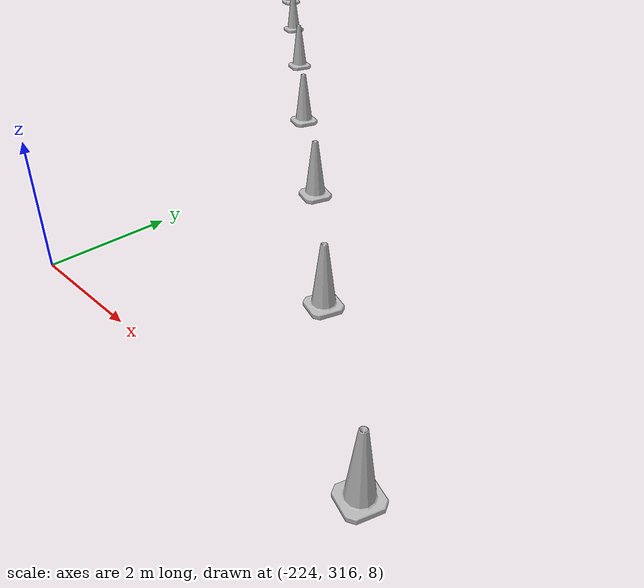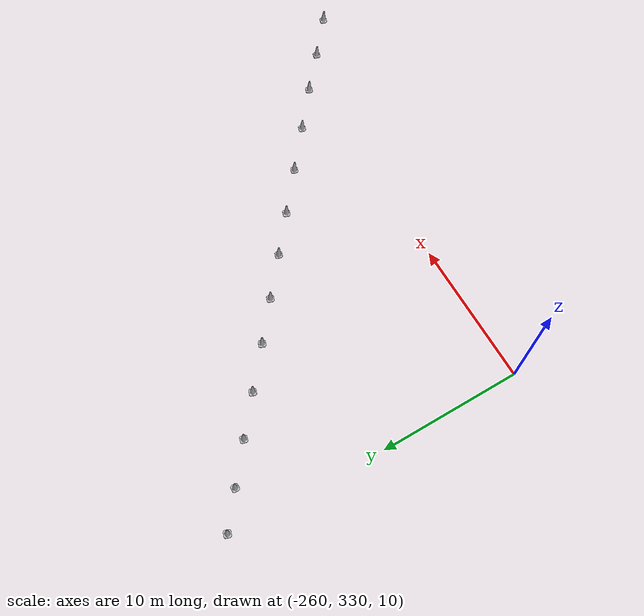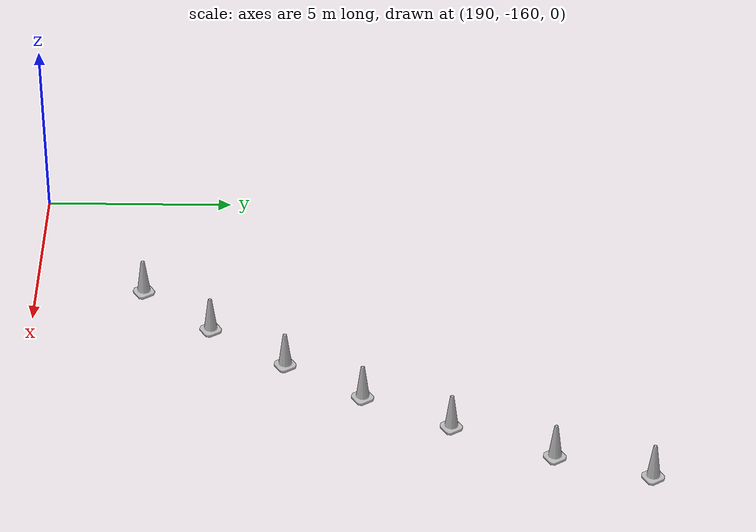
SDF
<sdf version="1.6">
 <world name="default">
  <light name="sun" type="directional">
   <pose>0 0 10 0 -0 0</pose>
   <diffuse>0.8 0.8 0.8 1</diffuse>
   <specular>0.2 0.2 0.2 1</specular>
   <attenuation>
    <range>1000</range>
    <constant>0.9</constant>
    <linear>0.01</linear>
    <quadratic>0.001</quadratic>
   </attenuation>
   <direction>-0.5 0.1 -0.9</direction>
  </light>
  <spherical_coordinates>
   <surface_model>EARTH_WGS84</surface_model>
   <latitude_deg>38.161479</latitude_deg>
   <longitude_deg>-122.454630</longitude_deg>
   <elevation>488.0</elevation>
  </spherical_coordinates>
  <gravity>0 0 -9.8</gravity>
  <magnetic_field>6e-06 2.3e-05 -4.2e-05</magnetic_field>
  <atmosphere type="adiabatic"/>
  <physics name="default_physics" default="0" type="ode">
   <max_step_size>0.001</max_step_size>
   <real_time_factor>1</real_time_factor>
   <real_time_update_rate>1000</real_time_update_rate>
  </physics>
  <model name="Construction Cone">
   <link name="link">
    <collision name="collision">
     <geometry>
      <mesh><scale>10 10 10</scale><uri>model://construction_cone/meshes/construction_cone.dae</uri></mesh>
     </geometry>
    </collision>
    <visual name="visual">
     <geometry>
      <mesh><scale>10 10 10</scale><uri>model://construction_cone/meshes/construction_cone.dae</uri></mesh>
     </geometry>
    </visual>
    <inertial>
     <inertia><ixx>1</ixx><ixy>0</ixy><ixz>0</ixz><iyy>1</iyy><iyz>0</iyz><izz>1</izz></inertia>
     <mass>1</mass>
    </inertial>
   </link>
   <pose>-259.474 350.959 9.32149 0.01531 0.026577 -0.330622</pose>
  </model>
  <model name="Construction Cone_clone">
   <link name="link">
    <collision name="collision">
     <geometry>
      <mesh><scale>10 10 10</scale><uri>model://construction_cone/meshes/construction_cone.dae</uri></mesh>
     </geometry>
    </collision>
    <visual name="visual">
     <geometry>
      <mesh><scale>10 10 10</scale><uri>model://construction_cone/meshes/construction_cone.dae</uri></mesh>
     </geometry>
    </visual>
    <inertial>
     <inertia><ixx>1</ixx><ixy>0</ixy><ixz>0</ixz><iyy>1</iyy><iyz>0</iyz><izz>1</izz></inertia>
     <mass>1</mass>
    </inertial>
   </link>
   <pose>-257.228 349.17 9.23533 0.023241 0.019729 -0.018758</pose>
  </model>
  <model name="Construction Cone_clone_0">
   <link name="link">
    <collision name="collision">
     <geometry>
      <mesh><scale>10 10 10</scale><uri>model://construction_cone/meshes/construction_cone.dae</uri></mesh>
     </geometry>
    </collision>
    <visual name="visual">
     <geometry>
      <mesh><scale>10 10 10</scale><uri>model://construction_cone/meshes/construction_cone.dae</uri></mesh>
     </geometry>
    </visual>
    <inertial>
     <inertia><ixx>1</ixx><ixy>0</ixy><ixz>0</ixz><iyy>1</iyy><iyz>0</iyz><izz>1</izz></inertia>
     <mass>1</mass>
    </inertial>
   </link>
   <pose>-254.758 347.172 9.13986 0.018156 0.024823 -0.278009</pose>
  </model>
  <model name="Construction Cone_clone_1">
   <link name="link">
    <collision name="collision">
     <geometry>
      <mesh><scale>10 10 10</scale><uri>model://construction_cone/meshes/construction_cone.dae</uri></mesh>
     </geometry>
    </collision>
    <visual name="visual">
     <geometry>
      <mesh><scale>10 10 10</scale><uri>model://construction_cone/meshes/construction_cone.dae</uri></mesh>
     </geometry>
    </visual>
    <inertial>
     <inertia><ixx>1</ixx><ixy>0</ixy><ixz>0</ixz><iyy>1</iyy><iyz>0</iyz><izz>1</izz></inertia>
     <mass>1</mass>
    </inertial>
   </link>
   <pose>-252.29 345.119 9.04331 0.017016 0.026106 -0.331831</pose>
  </model>
  <model name="Construction Cone_clone_2">
   <link name="link">
    <collision name="collision">
     <geometry>
      <mesh><scale>10 10 10</scale><uri>model://construction_cone/meshes/construction_cone.dae</uri></mesh>
     </geometry>
    </collision>
    <visual name="visual">
     <geometry>
      <mesh><scale>10 10 10</scale><uri>model://construction_cone/meshes/construction_cone.dae</uri></mesh>
     </geometry>
    </visual>
    <inertial>
     <inertia><ixx>1</ixx><ixy>0</ixy><ixz>0</ixz><iyy>1</iyy><iyz>0</iyz><izz>1</izz></inertia>
     <mass>1</mass>
    </inertial>
   </link>
   <pose>-249.653 342.911 8.93986 0.016585 0.025846 -0.330574</pose>
  </model>
  <model name="Construction Cone_clone_3">
   <link name="link">
    <collision name="collision">
     <geometry>
      <mesh><scale>10 10 10</scale><uri>model://construction_cone/meshes/construction_cone.dae</uri></mesh>
     </geometry>
    </collision>
    <visual name="visual">
     <geometry>
      <mesh><scale>10 10 10</scale><uri>model://construction_cone/meshes/construction_cone.dae</uri></mesh>
     </geometry>
    </visual>
    <inertial>
     <inertia><ixx>1</ixx><ixy>0</ixy><ixz>0</ixz><iyy>1</iyy><iyz>0</iyz><izz>1</izz></inertia>
     <mass>1</mass>
    </inertial>
   </link>
   <pose>-247.076 340.796 8.83966 0.016573 0.026144 -0.34804</pose>
  </model>
  <model name="Construction Cone_clone_4">
   <link name="link">
    <collision name="collision">
     <geometry>
      <mesh><scale>10 10 10</scale><uri>model://construction_cone/meshes/construction_cone.dae</uri></mesh>
     </geometry>
    </collision>
    <visual name="visual">
     <geometry>
      <mesh><scale>10 10 10</scale><uri>model://construction_cone/meshes/construction_cone.dae</uri></mesh>
     </geometry>
    </visual>
    <inertial>
     <inertia><ixx>1</ixx><ixy>0</ixy><ixz>0</ixz><iyy>1</iyy><iyz>0</iyz><izz>1</izz></inertia>
     <mass>1</mass>
    </inertial>
   </link>
   <pose>-244.474 338.632 8.73788 0.016839 0.025703 -0.330593</pose>
  </model>
  <model name="Construction Cone_clone_5">
   <link name="link">
    <collision name="collision">
     <geometry>
      <mesh><scale>10 10 10</scale><uri>model://construction_cone/meshes/construction_cone.dae</uri></mesh>
     </geometry>
    </collision>
    <visual name="visual">
     <geometry>
      <mesh><scale>10 10 10</scale><uri>model://construction_cone/meshes/construction_cone.dae</uri></mesh>
     </geometry>
    </visual>
    <inertial>
     <inertia><ixx>1</ixx><ixy>0</ixy><ixz>0</ixz><iyy>1</iyy><iyz>0</iyz><izz>1</izz></inertia>
     <mass>1</mass>
    </inertial>
   </link>
   <pose>-241.89 336.506 8.63729 0.017066 0.025563 -0.330611</pose>
  </model>
  <model name="Construction Cone_clone_6">
   <link name="link">
    <collision name="collision">
     <geometry>
      <mesh><scale>10 10 10</scale><uri>model://construction_cone/meshes/construction_cone.dae</uri></mesh>
     </geometry>
    </collision>
    <visual name="visual">
     <geometry>
      <mesh><scale>10 10 10</scale><uri>model://construction_cone/meshes/construction_cone.dae</uri></mesh>
     </geometry>
    </visual>
    <inertial>
     <inertia><ixx>1</ixx><ixy>0</ixy><ixz>0</ixz><iyy>1</iyy><iyz>0</iyz><izz>1</izz></inertia>
     <mass>1</mass>
    </inertial>
   </link>
   <pose>-239.097 334.208 8.52856 0.01744 0.025598 -0.330585</pose>
  </model>
  <model name="Construction Cone_clone_7">
   <link name="link">
    <collision name="collision">
     <geometry>
      <mesh><scale>10 10 10</scale><uri>model://construction_cone/meshes/construction_cone.dae</uri></mesh>
     </geometry>
    </collision>
    <visual name="visual">
     <geometry>
      <mesh><scale>10 10 10</scale><uri>model://construction_cone/meshes/construction_cone.dae</uri></mesh>
     </geometry>
    </visual>
    <inertial>
     <inertia><ixx>1</ixx><ixy>0</ixy><ixz>0</ixz><iyy>1</iyy><iyz>0</iyz><izz>1</izz></inertia>
     <mass>1</mass>
    </inertial>
   </link>
   <pose>-236.296 331.896 8.41937 0.017615 0.025525 -0.330641</pose>
  </model>
  <model name="Construction Cone_clone_8">
   <link name="link">
    <collision name="collision">
     <geometry>
      <mesh><scale>10 10 10</scale><uri>model://construction_cone/meshes/construction_cone.dae</uri></mesh>
     </geometry>
    </collision>
    <visual name="visual">
     <geometry>
      <mesh><scale>10 10 10</scale><uri>model://construction_cone/meshes/construction_cone.dae</uri></mesh>
     </geometry>
    </visual>
    <inertial>
     <inertia><ixx>1</ixx><ixy>0</ixy><ixz>0</ixz><iyy>1</iyy><iyz>0</iyz><izz>1</izz></inertia>
     <mass>1</mass>
    </inertial>
   </link>
   <pose>-233.585 329.683 8.31429 0.017783 0.025411 -0.330681</pose>
  </model>
  <model name="Construction Cone_clone_9">
   <link name="link">
    <collision name="collision">
     <geometry>
      <mesh><scale>10 10 10</scale><uri>model://construction_cone/meshes/construction_cone.dae</uri></mesh>
     </geometry>
    </collision>
    <visual name="visual">
     <geometry>
      <mesh><scale>10 10 10</scale><uri>model://construction_cone/meshes/construction_cone.dae</uri></mesh>
     </geometry>
    </visual>
    <inertial>
     <inertia><ixx>1</ixx><ixy>0</ixy><ixz>0</ixz><iyy>1</iyy><iyz>0</iyz><izz>1</izz></inertia>
     <mass>1</mass>
    </inertial>
   </link>
   <pose>-231.09 327.515 8.21467 0.016817 0.025778 -0.330634</pose>
  </model>
  <model name="Construction Cone_clone_10">
   <link name="link">
    <collision name="collision">
     <geometry>
      <mesh><scale>10 10 10</scale><uri>model://construction_cone/meshes/construction_cone.dae</uri></mesh>
     </geometry>
    </collision>
    <visual name="visual">
     <geometry>
      <mesh><scale>10 10 10</scale><uri>model://construction_cone/meshes/construction_cone.dae</uri></mesh>
     </geometry>
    </visual>
    <inertial>
     <inertia><ixx>1</ixx><ixy>0</ixy><ixz>0</ixz><iyy>1</iyy><iyz>0</iyz><izz>1</izz></inertia>
     <mass>1</mass>
    </inertial>
   </link>
   <pose>-228.477 325.332 8.11226 0.016678 0.025901 -0.330621</pose>
  </model>
  <model name="Construction Cone_clone_11">
   <link name="link">
    <collision name="collision">
     <geometry>
      <mesh><scale>10 10 10</scale><uri>model://construction_cone/meshes/construction_cone.dae</uri></mesh>
     </geometry>
    </collision>
    <visual name="visual">
     <geometry>
      <mesh><scale>10 10 10</scale><uri>model://construction_cone/meshes/construction_cone.dae</uri></mesh>
     </geometry>
    </visual>
    <inertial>
     <inertia><ixx>1</ixx><ixy>0</ixy><ixz>0</ixz><iyy>1</iyy><iyz>0</iyz><izz>1</izz></inertia>
     <mass>1</mass>
    </inertial>
   </link>
   <pose>-225.672 322.857 7.99957 0.015151 0.027222 -0.33061</pose>
  </model>
  <model name="Construction Cone_clone_12">
   <link name="link">
    <collision name="collision">
     <geometry>
      <mesh><scale>10 10 10</scale><uri>model://construction_cone/meshes/construction_cone.dae</uri></mesh>
     </geometry>
    </collision>
    <visual name="visual">
     <geometry>
      <mesh><scale>10 10 10</scale><uri>model://construction_cone/meshes/construction_cone.dae</uri></mesh>
     </geometry>
    </visual>
    <inertial>
     <inertia><ixx>1</ixx><ixy>0</ixy><ixz>0</ixz><iyy>1</iyy><iyz>0</iyz><izz>1</izz></inertia>
     <mass>1</mass>
    </inertial>
   </link>
   <pose>-223.019 320.647 7.89573 0.014539 0.026495 -0.330598</pose>
  </model>
  <model name="Construction Cone_clone_13">
   <link name="link">
    <collision name="collision">
     <geometry>
      <mesh><scale>10 10 10</scale><uri>model://construction_cone/meshes/construction_cone.dae</uri></mesh>
     </geometry>
    </collision>
    <visual name="visual">
     <geometry>
      <mesh><scale>10 10 10</scale><uri>model://construction_cone/meshes/construction_cone.dae</uri></mesh>
     </geometry>
    </visual>
    <inertial>
     <inertia><ixx>1</ixx><ixy>0</ixy><ixz>0</ixz><iyy>1</iyy><iyz>0</iyz><izz>1</izz></inertia>
     <mass>1</mass>
    </inertial>
   </link>
   <pose>-220.541 318.423 7.79539 0.012894 0.028146 -0.33062</pose>
  </model>
  <model name="Construction Cone_clone_14">
   <link name="link">
    <collision name="collision">
     <geometry>
      <mesh><scale>10 10 10</scale><uri>model://construction_cone/meshes/construction_cone.dae</uri></mesh>
     </geometry>
    </collision>
    <visual name="visual">
     <geometry>
      <mesh><scale>10 10 10</scale><uri>model://construction_cone/meshes/construction_cone.dae</uri></mesh>
     </geometry>
    </visual>
    <inertial>
     <inertia><ixx>1</ixx><ixy>0</ixy><ixz>0</ixz><iyy>1</iyy><iyz>0</iyz><izz>1</izz></inertia>
     <mass>1</mass>
    </inertial>
   </link>
   <pose>-217.899 316.356 7.69478 0.014502 0.027417 -0.330604</pose>
  </model>
  <model name="Construction Cone_clone_15">
   <link name="link">
    <collision name="collision">
     <geometry>
      <mesh><scale>10 10 10</scale><uri>model://construction_cone/meshes/construction_cone.dae</uri></mesh>
     </geometry>
    </collision>
    <visual name="visual">
     <geometry>
      <mesh><scale>10 10 10</scale><uri>model://construction_cone/meshes/construction_cone.dae</uri></mesh>
     </geometry>
    </visual>
    <inertial>
     <inertia><ixx>1</ixx><ixy>0</ixy><ixz>0</ixz><iyy>1</iyy><iyz>0</iyz><izz>1</izz></inertia>
     <mass>1</mass>
    </inertial>
   </link>
   <pose>-215.314 314.229 7.59414 0.01472 0.027267 -0.330629</pose>
  </model>
  <model name="Construction Cone_clone_16">
   <link name="link">
    <collision name="collision">
     <geometry>
      <mesh><scale>10 10 10</scale><uri>model://construction_cone/meshes/construction_cone.dae</uri></mesh>
     </geometry>
    </collision>
    <visual name="visual">
     <geometry>
      <mesh><scale>10 10 10</scale><uri>model://construction_cone/meshes/construction_cone.dae</uri></mesh>
     </geometry>
    </visual>
    <inertial>
     <inertia><ixx>1</ixx><ixy>0</ixy><ixz>0</ixz><iyy>1</iyy><iyz>0</iyz><izz>1</izz></inertia>
     <mass>1</mass>
    </inertial>
   </link>
   <pose>-212.945 312.263 7.50127 0.014672 0.027442 -0.329767</pose>
  </model>
  <model name="Construction Cone_0">
   <link name="link">
    <collision name="collision">
     <geometry>
      <mesh><scale>10 10 10</scale><uri>model://construction_cone/meshes/construction_cone.dae</uri></mesh>
     </geometry>
    </collision>
    <visual name="visual">
     <geometry>
      <mesh><scale>10 10 10</scale><uri>model://construction_cone/meshes/construction_cone.dae</uri></mesh>
     </geometry>
    </visual>
    <inertial>
     <inertia><ixx>1</ixx><ixy>0</ixy><ixz>0</ixz><iyy>1</iyy><iyz>0</iyz><izz>1</izz></inertia>
     <mass>1</mass>
    </inertial>
   </link>
   <pose>-47.7701 173.324 0.716989 0.038163 0.012928 -0.058808</pose>
  </model>
  <model name="Construction Cone_0_clone">
   <link name="link">
    <collision name="collision">
     <geometry>
      <mesh><scale>10 10 10</scale><uri>model://construction_cone/meshes/construction_cone.dae</uri></mesh>
     </geometry>
    </collision>
    <visual name="visual">
     <geometry>
      <mesh><scale>10 10 10</scale><uri>model://construction_cone/meshes/construction_cone.dae</uri></mesh>
     </geometry>
    </visual>
    <inertial>
     <inertia><ixx>1</ixx><ixy>0</ixy><ixz>0</ixz><iyy>1</iyy><iyz>0</iyz><izz>1</izz></inertia>
     <mass>1</mass>
    </inertial>
   </link>
   <pose>-45.8133 171.554 0.603311 0.080934 -0.011197 -0.07125</pose>
  </model>
  <model name="Construction Cone_0_clone_0">
   <link name="link">
    <collision name="collision">
     <geometry>
      <mesh><scale>10 10 10</scale><uri>model://construction_cone/meshes/construction_cone.dae</uri></mesh>
     </geometry>
    </collision>
    <visual name="visual">
     <geometry>
      <mesh><scale>10 10 10</scale><uri>model://construction_cone/meshes/construction_cone.dae</uri></mesh>
     </geometry>
    </visual>
    <inertial>
     <inertia><ixx>1</ixx><ixy>0</ixy><ixz>0</ixz><iyy>1</iyy><iyz>0</iyz><izz>1</izz></inertia>
     <mass>1</mass>
    </inertial>
   </link>
   <pose>-43.4481 169.4 0.480509 0.069002 -0.012315 -0.054924</pose>
  </model>
  <model name="Construction Cone_0_clone_1">
   <link name="link">
    <collision name="collision">
     <geometry>
      <mesh><scale>10 10 10</scale><uri>model://construction_cone/meshes/construction_cone.dae</uri></mesh>
     </geometry>
    </collision>
    <visual name="visual">
     <geometry>
      <mesh><scale>10 10 10</scale><uri>model://construction_cone/meshes/construction_cone.dae</uri></mesh>
     </geometry>
    </visual>
    <inertial>
     <inertia><ixx>1</ixx><ixy>0</ixy><ixz>0</ixz><iyy>1</iyy><iyz>0</iyz><izz>1</izz></inertia>
     <mass>1</mass>
    </inertial>
   </link>
   <pose>-41.1876 167.342 0.441877 -1e-05 -0.027645 -0.077162</pose>
  </model>
  <model name="Construction Cone_0_clone_2">
   <link name="link">
    <collision name="collision">
     <geometry>
      <mesh><scale>10 10 10</scale><uri>model://construction_cone/meshes/construction_cone.dae</uri></mesh>
     </geometry>
    </collision>
    <visual name="visual">
     <geometry>
      <mesh><scale>10 10 10</scale><uri>model://construction_cone/meshes/construction_cone.dae</uri></mesh>
     </geometry>
    </visual>
    <inertial>
     <inertia><ixx>1</ixx><ixy>0</ixy><ixz>0</ixz><iyy>1</iyy><iyz>0</iyz><izz>1</izz></inertia>
     <mass>1</mass>
    </inertial>
   </link>
   <pose>-38.9312 165.342 0.508367 -5.3e-05 -0.027645 -0.075628</pose>
  </model>
  <model name="Construction Cone_0_clone_3">
   <link name="link">
    <collision name="collision">
     <geometry>
      <mesh><scale>10 10 10</scale><uri>model://construction_cone/meshes/construction_cone.dae</uri></mesh>
     </geometry>
    </collision>
    <visual name="visual">
     <geometry>
      <mesh><scale>10 10 10</scale><uri>model://construction_cone/meshes/construction_cone.dae</uri></mesh>
     </geometry>
    </visual>
    <inertial>
     <inertia><ixx>1</ixx><ixy>0</ixy><ixz>0</ixz><iyy>1</iyy><iyz>0</iyz><izz>1</izz></inertia>
     <mass>1</mass>
    </inertial>
   </link>
   <pose>-36.967 163.605 0.566234 -0.000317 -0.027644 -0.066053</pose>
  </model>
  <model name="Construction Cone_0_clone_4">
   <link name="link">
    <collision name="collision">
     <geometry>
      <mesh><scale>10 10 10</scale><uri>model://construction_cone/meshes/construction_cone.dae</uri></mesh>
     </geometry>
    </collision>
    <visual name="visual">
     <geometry>
      <mesh><scale>10 10 10</scale><uri>model://construction_cone/meshes/construction_cone.dae</uri></mesh>
     </geometry>
    </visual>
    <inertial>
     <inertia><ixx>1</ixx><ixy>0</ixy><ixz>0</ixz><iyy>1</iyy><iyz>0</iyz><izz>1</izz></inertia>
     <mass>1</mass>
    </inertial>
   </link>
   <pose>-34.7753 161.566 0.631034 -0.000479 -0.027641 -0.060212</pose>
  </model>
  <model name="Construction Cone_1">
   <link name="link">
    <collision name="collision">
     <geometry>
      <mesh><scale>10 10 10</scale><uri>model://construction_cone/meshes/construction_cone.dae</uri></mesh>
     </geometry>
    </collision>
    <visual name="visual">
     <geometry>
      <mesh><scale>10 10 10</scale><uri>model://construction_cone/meshes/construction_cone.dae</uri></mesh>
     </geometry>
    </visual>
    <inertial>
     <inertia><ixx>1</ixx><ixy>0</ixy><ixz>0</ixz><iyy>1</iyy><iyz>0</iyz><izz>1</izz></inertia>
     <mass>1</mass>
    </inertial>
   </link>
   <pose>198.384 -143.75 -2.34824 0 -0 2.14398</pose>
  </model>
  <model name="Construction Cone_1_clone">
   <link name="link">
    <collision name="collision">
     <geometry>
      <mesh><scale>10 10 10</scale><uri>model://construction_cone/meshes/construction_cone.dae</uri></mesh>
     </geometry>
    </collision>
    <visual name="visual">
     <geometry>
      <mesh><scale>10 10 10</scale><uri>model://construction_cone/meshes/construction_cone.dae</uri></mesh>
     </geometry>
    </visual>
    <inertial>
     <inertia><ixx>1</ixx><ixy>0</ixy><ixz>0</ixz><iyy>1</iyy><iyz>0</iyz><izz>1</izz></inertia>
     <mass>1</mass>
    </inertial>
   </link>
   <pose>197.644 -146.264 -2.34825 0 -0 2.14398</pose>
  </model>
  <model name="Construction Cone_1_clone_0">
   <link name="link">
    <collision name="collision">
     <geometry>
      <mesh><scale>10 10 10</scale><uri>model://construction_cone/meshes/construction_cone.dae</uri></mesh>
     </geometry>
    </collision>
    <visual name="visual">
     <geometry>
      <mesh><scale>10 10 10</scale><uri>model://construction_cone/meshes/construction_cone.dae</uri></mesh>
     </geometry>
    </visual>
    <inertial>
     <inertia><ixx>1</ixx><ixy>0</ixy><ixz>0</ixz><iyy>1</iyy><iyz>0</iyz><izz>1</izz></inertia>
     <mass>1</mass>
    </inertial>
   </link>
   <pose>196.505 -148.949 -2.34824 -2e-06 -0 2.14398</pose>
  </model>
  <model name="Construction Cone_1_clone_1">
   <link name="link">
    <collision name="collision">
     <geometry>
      <mesh><scale>10 10 10</scale><uri>model://construction_cone/meshes/construction_cone.dae</uri></mesh>
     </geometry>
    </collision>
    <visual name="visual">
     <geometry>
      <mesh><scale>10 10 10</scale><uri>model://construction_cone/meshes/construction_cone.dae</uri></mesh>
     </geometry>
    </visual>
    <inertial>
     <inertia><ixx>1</ixx><ixy>0</ixy><ixz>0</ixz><iyy>1</iyy><iyz>0</iyz><izz>1</izz></inertia>
     <mass>1</mass>
    </inertial>
   </link>
   <pose>195.354 -151.301 -2.34824 0 -0 2.14398</pose>
  </model>
  <model name="Construction Cone_1_clone_2">
   <link name="link">
    <collision name="collision">
     <geometry>
      <mesh><scale>10 10 10</scale><uri>model://construction_cone/meshes/construction_cone.dae</uri></mesh>
     </geometry>
    </collision>
    <visual name="visual">
     <geometry>
      <mesh><scale>10 10 10</scale><uri>model://construction_cone/meshes/construction_cone.dae</uri></mesh>
     </geometry>
    </visual>
    <inertial>
     <inertia><ixx>1</ixx><ixy>0</ixy><ixz>0</ixz><iyy>1</iyy><iyz>0</iyz><izz>1</izz></inertia>
     <mass>1</mass>
    </inertial>
   </link>
   <pose>194.045 -153.406 -2.34824 -0 1e-06 2.14398</pose>
  </model>
  <model name="Construction Cone_1_clone_3">
   <link name="link">
    <collision name="collision">
     <geometry>
      <mesh><scale>10 10 10</scale><uri>model://construction_cone/meshes/construction_cone.dae</uri></mesh>
     </geometry>
    </collision>
    <visual name="visual">
     <geometry>
      <mesh><scale>10 10 10</scale><uri>model://construction_cone/meshes/construction_cone.dae</uri></mesh>
     </geometry>
    </visual>
    <inertial>
     <inertia><ixx>1</ixx><ixy>0</ixy><ixz>0</ixz><iyy>1</iyy><iyz>0</iyz><izz>1</izz></inertia>
     <mass>1</mass>
    </inertial>
   </link>
   <pose>192.578 -155.488 -2.34824 -1e-06 1e-06 2.14398</pose>
  </model>
  <model name="Construction Cone_1_clone_4">
   <link name="link">
    <collision name="collision">
     <geometry>
      <mesh><scale>10 10 10</scale><uri>model://construction_cone/meshes/construction_cone.dae</uri></mesh>
     </geometry>
    </collision>
    <visual name="visual">
     <geometry>
      <mesh><scale>10 10 10</scale><uri>model://construction_cone/meshes/construction_cone.dae</uri></mesh>
     </geometry>
    </visual>
    <inertial>
     <inertia><ixx>1</ixx><ixy>0</ixy><ixz>0</ixz><iyy>1</iyy><iyz>0</iyz><izz>1</izz></inertia>
     <mass>1</mass>
    </inertial>
   </link>
   <pose>190.953 -157.424 -2.34824 -1e-06 -0 2.14398</pose>
  </model>
 </world>
</sdf>
